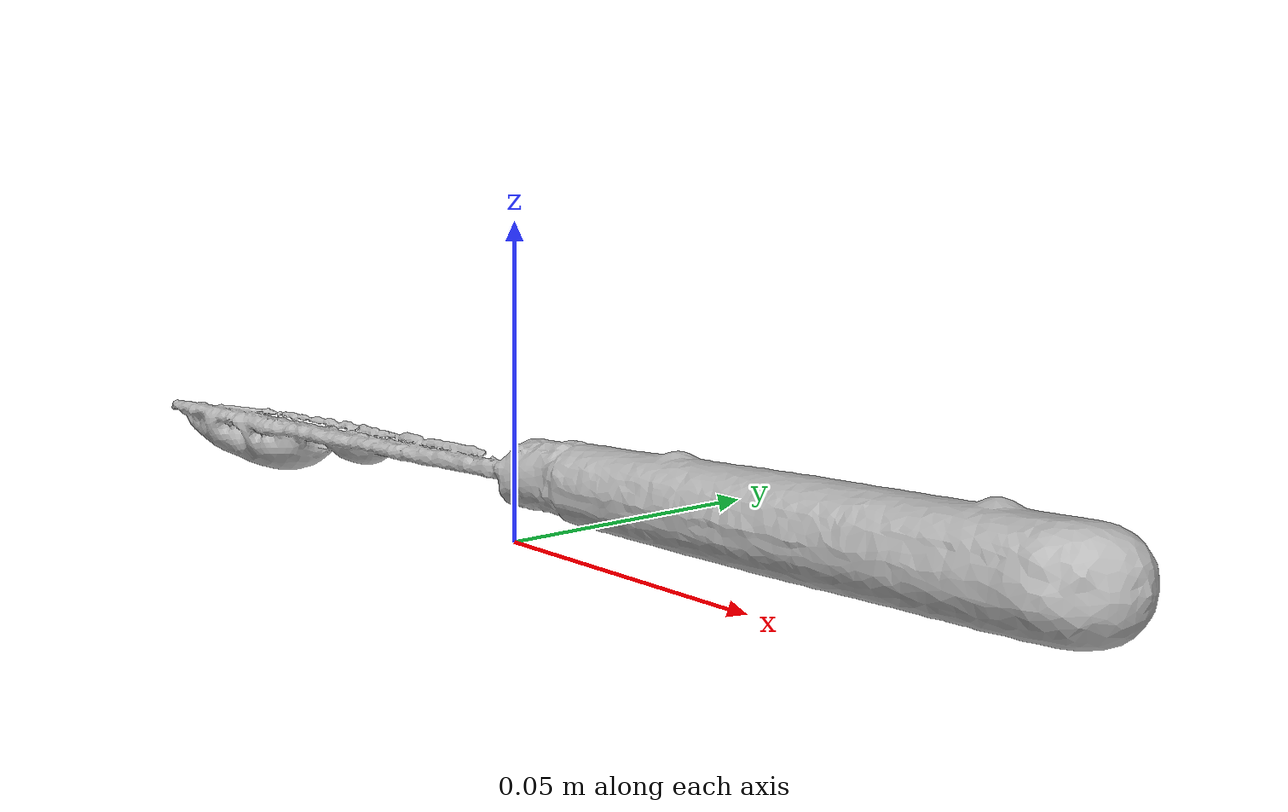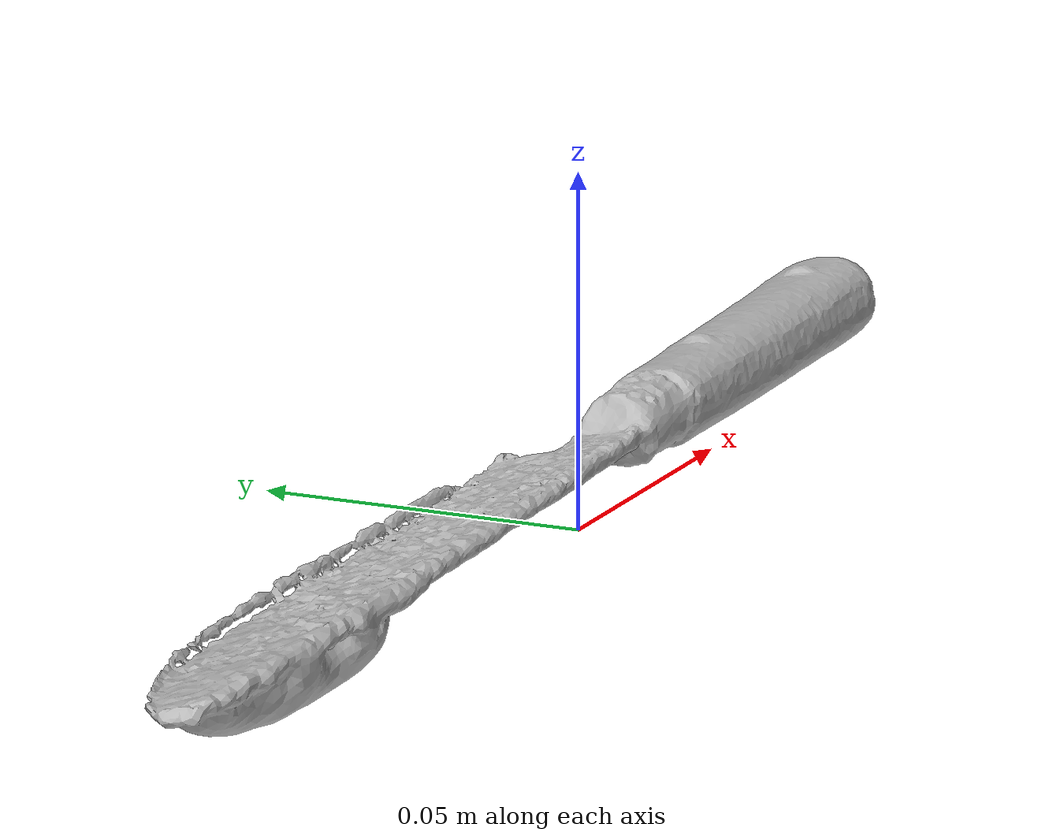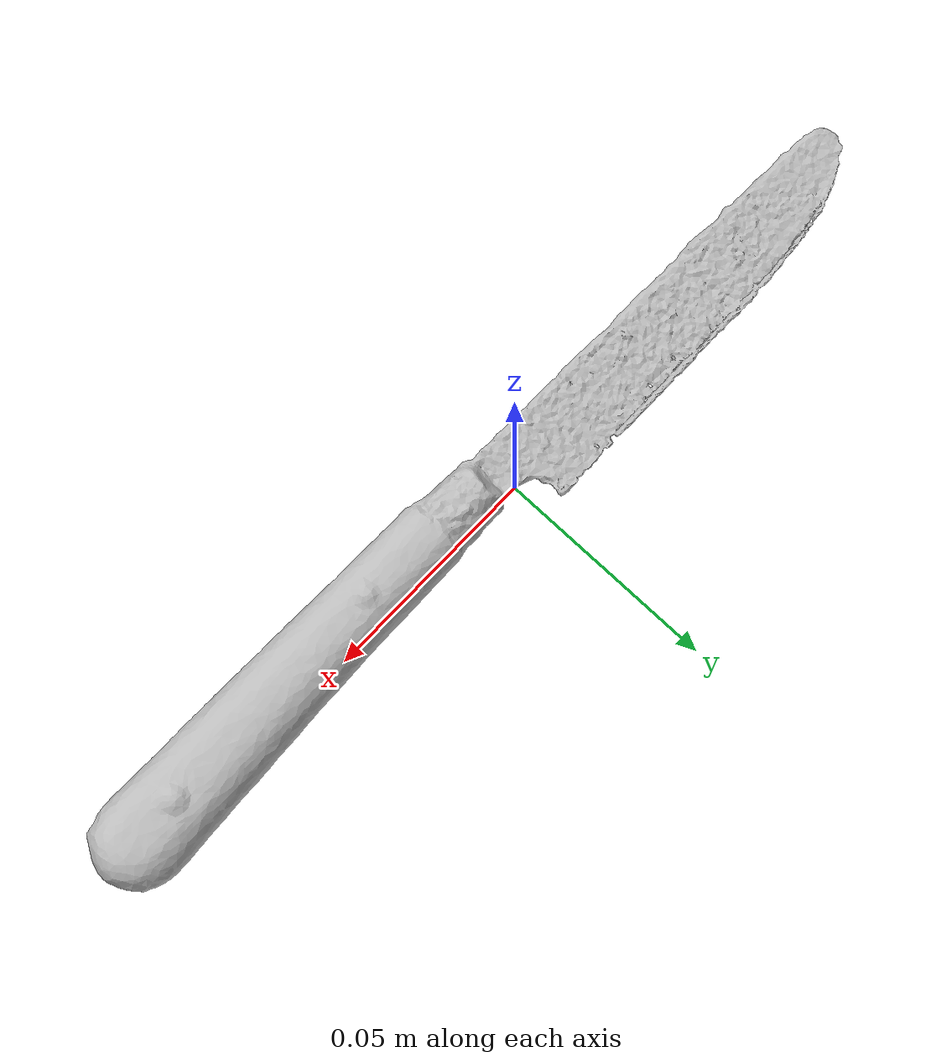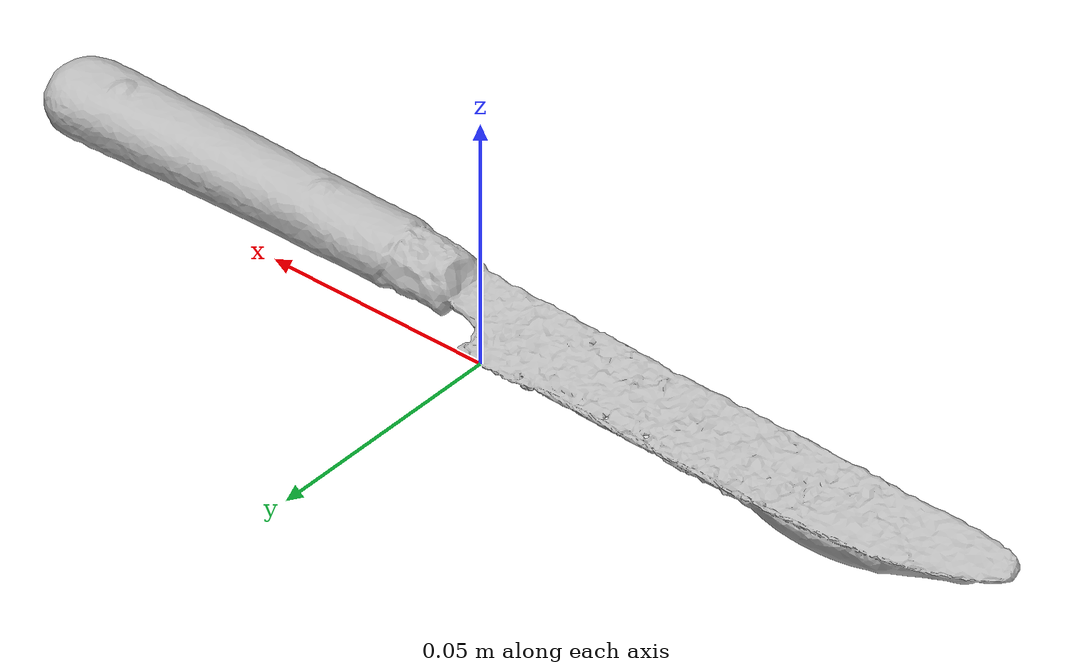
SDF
<?xml version="1.0" ?>
<sdf version='1.8'>
  <model name='ycb_032_knife'>
    <link name='body'>
      <inertial>
        <mass>0.031</mass>
        <pose>0.0273780762 -0.00153663139 0.0123783858 0 0 0</pose>
        <inertia>
          <ixx>1.12290664972e-06</ixx>
          <ixy>5.66844037917e-07</ixy>
          <ixz>-5.82460384599e-06</ixz>
          <iyy>0.000116295384783</iyy>
          <iyz>8.0489251476e-08</iyz>
          <izz>0.000116226508775</izz>
        </inertia>
      </inertial>
      <visual name='ycb_032_knife_visual'>
        <pose>0.018933 0.027556 0.007378 0 0 0</pose>
        <geometry>
          <mesh>
            <uri>model://ycb_032_knife/meshes/textured.dae</uri>
          </mesh>
        </geometry>
      </visual>
      <collision name='ycb_032_knife_collision'>
        <pose>0.018933 0.027556 0.007378 0 0 0</pose>
        <geometry>
          <mesh>
            <uri>model://ycb_032_knife/meshes/nontextured.stl</uri>
          </mesh>
        </geometry>
        <max_contacts>10</max_contacts>
        <surface>
          <contact>
            <ode>
              <kp>1e15</kp>
              <kd>1e13</kd>
            </ode>
          </contact>
        </surface>
      </collision>
    </link>
  </model>
</sdf>
